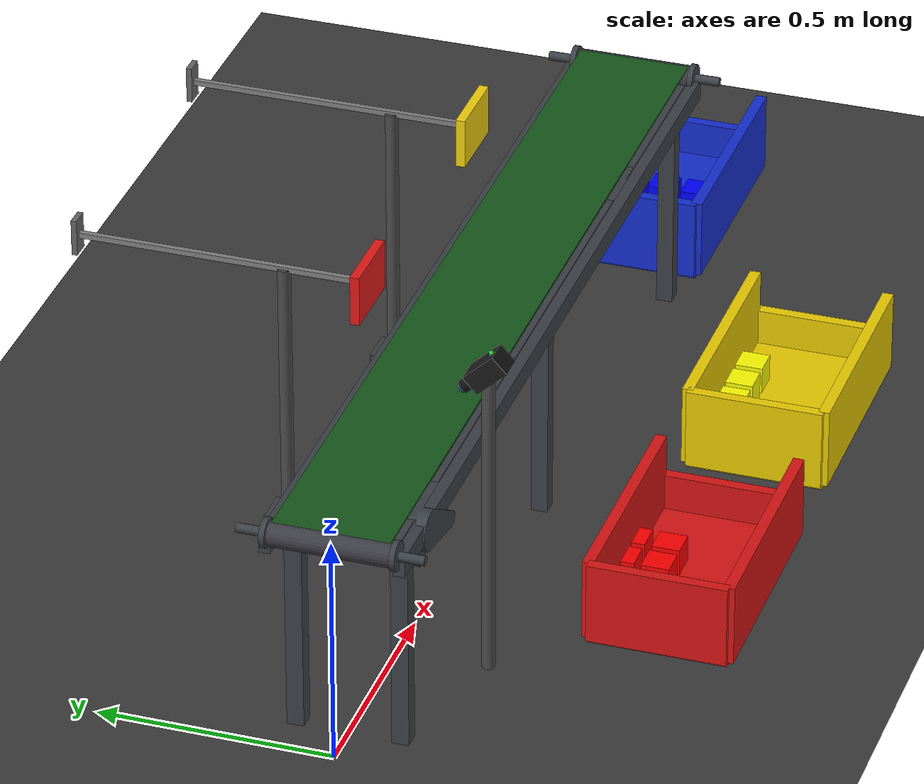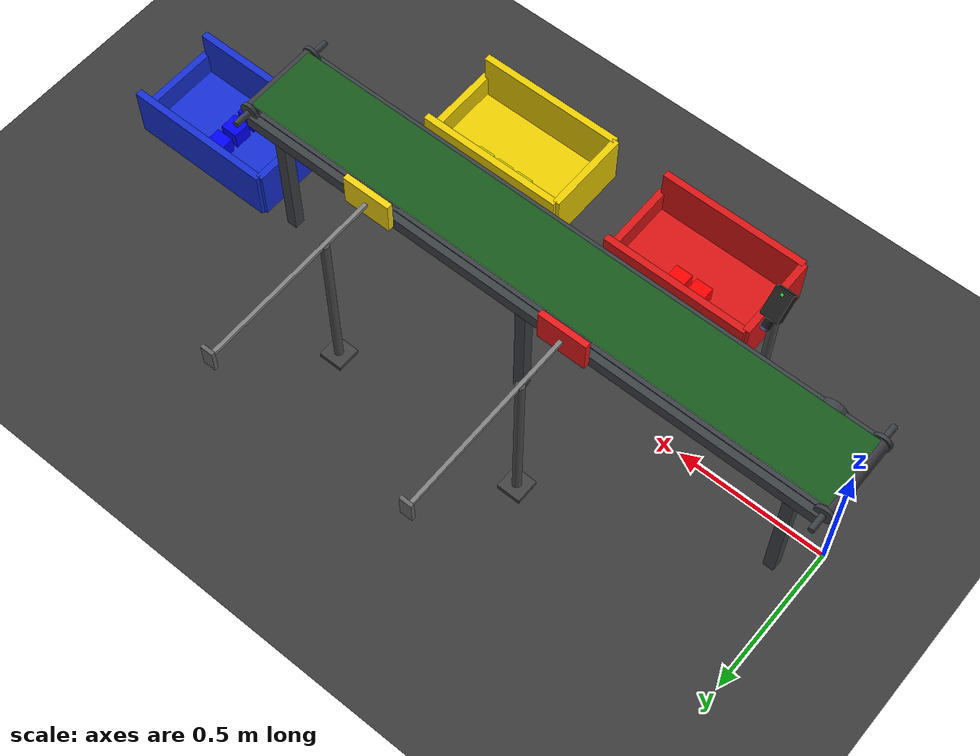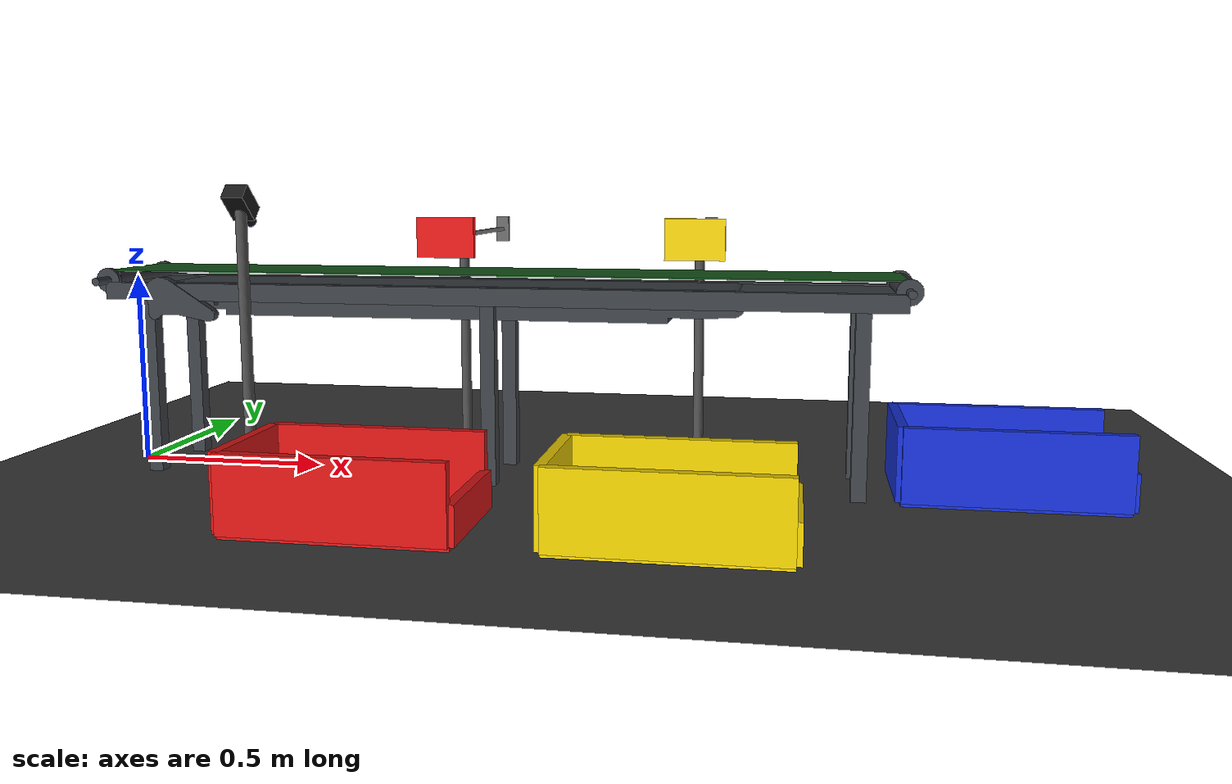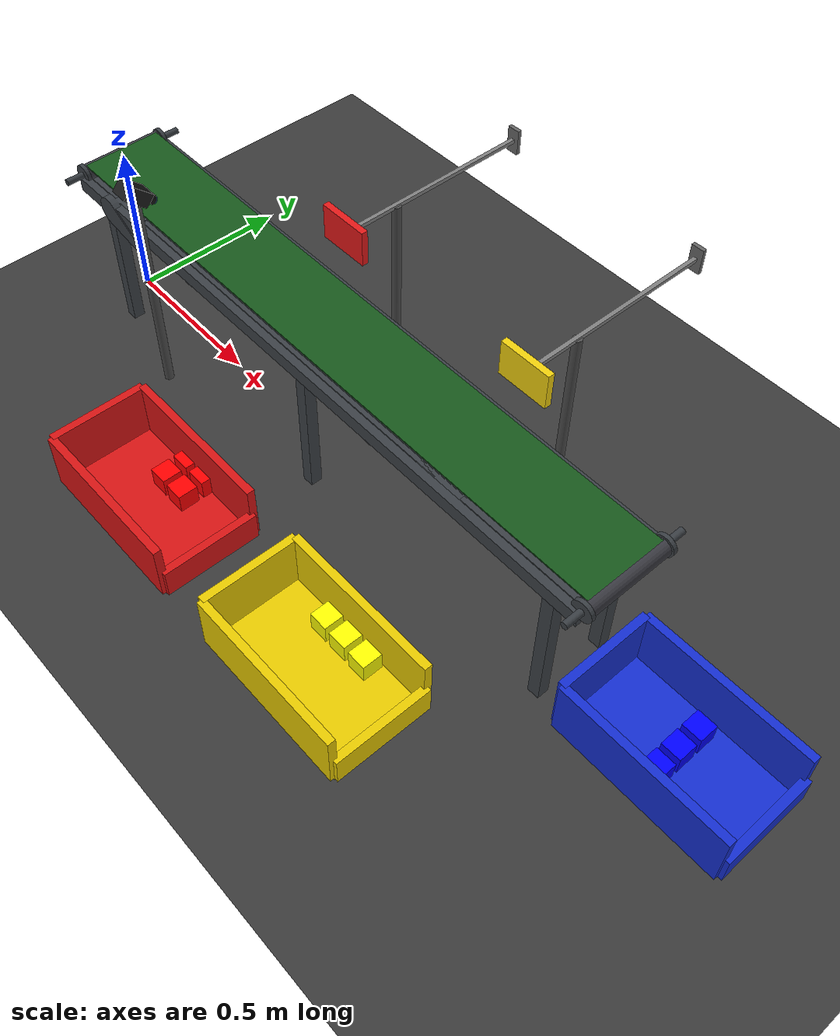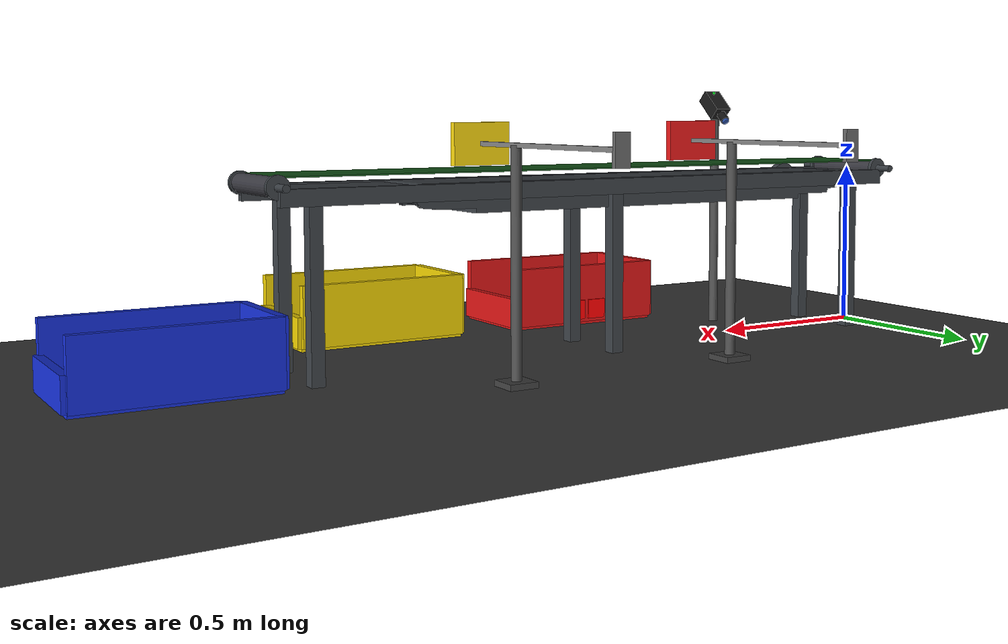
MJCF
<mujoco model="KGF65-KA_BeltConveyor">
  <compiler angle="degree" meshdir="." texturedir="."/>
  <option gravity="0 0 -9.81"
          timestep="0.002"
          solver="Newton"
          iterations="100"
          tolerance="1e-10"
          cone="pyramidal"
          impratio="10"/>

  <!--  ASSET-->
  <asset>
    <mesh name="simlify" file="simlify.stl" scale="0.001 0.001 0.001"/>
    <texture name="belt_tex"  type="2d" file="belt_stripe.png"/>
    <texture name="metal_tex" type="2d" builtin="flat"
             rgb1=".48 .50 .52" width="1" height="1"/>
    <texture name="drum_tex"  type="2d" builtin="checker"
             rgb1=".18 .18 .20" rgb2=".28 .28 .32" width="64" height="64"/>
    <texture name="grid_tex"  type="2d" builtin="checker"
             rgb1=".20 .20 .20" rgb2=".26 .26 .26" width="64" height="64"/>
    <material name="belt_mat"    texture="belt_tex"
              texrepeat="20 1"   specular="0.05" shininess="0.03"
              rgba="0.12 0.48 0.16 1"/>
    <material name="frame_mat"   texture="metal_tex"
              specular="0.4"    shininess="0.25"
              rgba=".48 .50 .52 1"/>
    <material name="drum_mat"    texture="drum_tex"
              texrepeat="8 4"   specular="0.7" shininess="0.6"
              rgba="1 1 1 1"/>
    <material name="ground_mat"  texture="grid_tex"
              texrepeat="24 24" specular="0.05" shininess="0.03"
              rgba="1 1 1 1"/>
    <!-- Object materials -->
    <material name="obj0_mat" rgba="1 0 0 1"/>
    <material name="obj1_mat" rgba="0 0 1 1"/>
    <material name="obj2_mat" rgba="1 1 0 1"/>
    <material name="obj3_mat" rgba="1 0 0 1"/>
    <material name="obj4_mat" rgba="0 0 1 1"/>
    <material name="obj5_mat" rgba="1 1 0 1"/>
    <material name="obj6_mat" rgba="1 0 0 1"/>
    <material name="obj7_mat" rgba="0 0 1 1"/>
    <material name="obj8_mat" rgba="1 1 0 1"/>
    <material name="obj9_mat" rgba="1 0 0 1"/>
  </asset>

  <!-- DEFAULT -->
  <default>
    <geom condim="4"
          friction="0.8 0.008 0.0005"
          solimp="0.98 0.999 0.001 0.5 2"
          solref="0.010 1"/>
    <joint limited="false" damping="0.02" armature="0.001"/>

    <!-- Conveyor objects -->
    <default class="flat_obj">
      <geom type="box"
            size="0.030 0.030 0.030"
            condim="4"
            friction="0.75 0.006 0.0004"
            solimp="0.97 0.999 0.002 0.5 2"
            solref="0.010 1"
            density="600"
            contype="1" conaffinity="1"/>
      <joint type="free" damping="0.0" armature="0.0"/>
    </default>

    <!-- Bin walls -->
    <default class="bin_wall">
      <geom type="box"
            condim="3"
            friction="0.4 0.004 0.0002"
            solimp="0.98 0.999 0.001 0.5 2"
            solref="0.010 1"
            contype="1" conaffinity="1"/>
    </default>

    <!-- Pusher face -->
    <default class="pusher_face">
      <geom type="box"
            condim="3"
            friction="0.3 0.003 0.0001"
            solimp="0.99 0.999 0.001 0.5 2"
            solref="0.008 1"
            contype="1" conaffinity="1"/>
    </default>

  </default>

  <!-- WORLDBODY -->
  <worldbody>
    <!-- Ground plane -->
    <geom name="ground" type="plane" size="12 8 0.1"
          material="ground_mat"
          friction="0.5 0.005 0.0002"
          solimp="0.99 0.999 0.001" solref="0.010 1"
          contype="1" conaffinity="1"/>
    <!-- Lighting -->
    <light name="sun"  directional="true"
           diffuse=".85 .85 .85" specular=".2 .2 .2"
           pos="2 -2 6" dir="-.3 .4 -1" castshadow="true"/>
    <light name="fill" directional="false" diffuse=".35 .35 .38"
           pos="-1 3 4" dir=".4 -.5 -1" castshadow="false"/>
    <light name="top"  directional="false" diffuse=".25 .25 .25"
           pos="1 0 5"  dir="0 0 -1"     castshadow="false"/>
    <!-- SIDE CAMERA MOUNT -->

    <!-- Vertical post -->
    <geom type="cylinder" size="0.014 0.350"
          pos="0.40 -0.19 0.350"
          rgba=".30 .30 .30 1" contype="0" conaffinity="0"/>

    <!-- Camera body -->
    <body name="camera_body" pos="0.40 -0.19 0.70" euler="47 0 0">
      <!-- Housing box -->
      <geom type="box" size="0.028 0.022 0.042"
            rgba=".10 .10 .10 1" contype="0" conaffinity="0"/>
      <!-- Lens barrel -->
      <geom type="cylinder" size="0.014 0.016" pos="0 0 -0.056"
            rgba=".07 .07 .07 1" contype="0" conaffinity="0"/>
      <!-- Lens glass -->
      <geom type="cylinder" size="0.011 0.003" pos="0 0 -0.075"
            rgba=".25 .45 .90 0.75" contype="0" conaffinity="0"/>
      <!-- Status LED -->
      <geom type="sphere" size="0.005" pos="0 0.024 0.030"
            rgba=".05 .90 .15 1" contype="0" conaffinity="0"/>
      <!-- Camera sensor -->
      <camera name="side_camera" fovy="50"/>
    </body>

    <!--  CONVEYOR FRAME ASSEMBLY  -->
    <body name="conveyor_frame" pos="0 0 0">
      <geom name="frame_mesh" type="mesh" mesh="simlify"
            euler="0 90 90"
            pos="0.875 0 0.440"
            contype="0" conaffinity="0"
            material="frame_mat"/>
      <!-- Leg pairs -->
      <geom type="box" size=".018 .018 .237" pos=".10  -.110 .237" material="frame_mat" contype="0" conaffinity="0"/>
      <geom type="box" size=".018 .018 .237" pos=".10   .110 .237" material="frame_mat" contype="0" conaffinity="0"/>
      <geom type="box" size=".018 .018 .237" pos="1.00 -.110 .237" material="frame_mat" contype="0" conaffinity="0"/>
      <geom type="box" size=".018 .018 .237" pos="1.00  .110 .237" material="frame_mat" contype="0" conaffinity="0"/>
      <geom type="box" size=".018 .018 .237" pos="1.90 -.110 .237" material="frame_mat" contype="0" conaffinity="0"/>
      <geom type="box" size=".018 .018 .237" pos="1.90  .110 .237" material="frame_mat" contype="0" conaffinity="0"/>
      <!-- Rails & bed -->
      <geom name="rail_l" type="box" size="1.0 .012 .022" pos="1.0 -.138 .474" material="frame_mat" contype="0" conaffinity="0"/>
      <geom name="rail_r" type="box" size="1.0 .012 .022" pos="1.0  .138 .474" material="frame_mat" contype="0" conaffinity="0"/>
      <geom name="bed"    type="box" size="1.0 .122 .005" pos="1.0  .000 .487" material="frame_mat" contype="0" conaffinity="0"/>
      <!-- Drive drum -->
      <geom type="cylinder" size=".026 .126" pos="0.0  0.000 0.500" euler="90 0 0" material="drum_mat"  contype="0" conaffinity="0"/>
      <geom type="cylinder" size=".031 .006" pos="0.0  .133 0.500" euler="90 0 0"  material="frame_mat" contype="0" conaffinity="0"/>
      <geom type="cylinder" size=".031 .006" pos="0.0 -.133 0.500" euler="90 0 0"  material="frame_mat" contype="0" conaffinity="0"/>
      <geom type="cylinder" size=".010 .028" pos="0.0  .165 0.500" euler="90 0 0"  material="frame_mat" contype="0" conaffinity="0"/>
      <geom type="cylinder" size=".010 .028" pos="0.0 -.165 0.500" euler="90 0 0"  material="frame_mat" contype="0" conaffinity="0"/>
      <!-- Passive drum -->
      <geom type="cylinder" size=".026 .126" pos="2.0  0.000 0.500" euler="90 0 0" material="drum_mat"  contype="0" conaffinity="0"/>
      <geom type="cylinder" size=".031 .006" pos="2.0  .133 0.500" euler="90 0 0"  material="frame_mat" contype="0" conaffinity="0"/>
      <geom type="cylinder" size=".031 .006" pos="2.0 -.133 0.500" euler="90 0 0"  material="frame_mat" contype="0" conaffinity="0"/>
      <geom type="cylinder" size=".010 .028" pos="2.0  .165 0.500" euler="90 0 0"  material="frame_mat" contype="0" conaffinity="0"/>
      <geom type="cylinder" size=".010 .028" pos="2.0 -.165 0.500" euler="90 0 0"  material="frame_mat" contype="0" conaffinity="0"/>
      <!-- Belt visual -->
      <geom name="belt_visual" type="box" size="1.0 0.122 0.002"
            pos="1.0 0 0.524"
            contype="0" conaffinity="0"
            material="belt_mat"/>
      <!-- Belt physics floor -->
      <geom name="belt_floor" type="box"
            size="1.0 0.125 0.002"
            pos="1.0 0 0.524"
            condim="4"
            friction="1.4 0.008 0.0006"
            solimp="0.97 0.999 0.002 0.5 2"
            solref="0.010 1"
            contype="1" conaffinity="1"
            rgba="0 0 0 0"/>
    </body><!-- conveyor_frame -->

    <!--  DROP-OFF BINS  -->
    <!-- RED BIN  -->
    <body name="red_bin" pos="0.8 -0.5 0">
      <geom class="bin_wall" size=".255 .148 .010" pos="0 0 .010"    rgba=".85 .08 .08 1"/>
      <geom class="bin_wall" size=".012 .148 .090" pos="-.255 0 .100" rgba=".85 .08 .08 1"/>
      <geom class="bin_wall" size=".255 .012 .090" pos="0 -.148 .100" rgba=".85 .08 .08 1"/>
      <geom class="bin_wall" size=".255 .012 .090" pos="0  .148 .100" rgba=".85 .08 .08 1"/>
      <geom class="bin_wall" size=".012 .148 .045" pos=".255 0 .055"  rgba=".85 .08 .08 1"/>
    </body>
    <!-- BLUE BIN  -->
    <body name="blue_bin" pos="2.25 0.00 0">
      <geom class="bin_wall" size=".255 .148 .010" pos="0 0 .010"    rgba=".08 .18 .82 1"/>
      <geom class="bin_wall" size=".012 .148 .090" pos="-.255 0 .100" rgba=".08 .18 .82 1"/>
      <geom class="bin_wall" size=".255 .012 .090" pos="0 -.148 .100" rgba=".08 .18 .82 1"/>
      <geom class="bin_wall" size=".255 .012 .090" pos="0  .148 .100" rgba=".08 .18 .82 1"/>
      <geom class="bin_wall" size=".012 .148 .045" pos=".255 0 .055"  rgba=".08 .18 .82 1"/>
    </body>
    <!-- YELLOW BIN  -->
    <body name="yellow_bin" pos="1.5 -0.5 0">
      <geom class="bin_wall" size=".255 .148 .010" pos="0 0 .010"    rgba=".92 .80 .00 1"/>
      <geom class="bin_wall" size=".012 .148 .090" pos="-.255 0 .100" rgba=".92 .80 .00 1"/>
      <geom class="bin_wall" size=".255 .012 .090" pos="0 -.148 .100" rgba=".92 .80 .00 1"/>
      <geom class="bin_wall" size=".255 .012 .090" pos="0  .148 .100" rgba=".92 .80 .00 1"/>
      <geom class="bin_wall" size=".012 .148 .045" pos=".255 0 .055"  rgba=".92 .80 .00 1"/>
    </body>

    <!-- PUSHER RED PEDESTAL -->
    <!-- Vertical post -->
    <geom type="cylinder" size="0.014 0.300"
          pos="0.80 0.38 0.300"
          rgba=".30 .30 .30 1" contype="0" conaffinity="0"/>
    <!-- Base plate -->
    <geom type="box" size="0.040 0.040 0.008"
          pos="0.80 0.38 0.008"
          rgba=".25 .25 .25 1" contype="0" conaffinity="0"/>

    <!-- PUSHER YELLOW PEDESTAL -->
    <!-- Vertical post -->
    <geom type="cylinder" size="0.014 0.300"
          pos="1.480 0.38 0.300"
          rgba=".30 .30 .30 1" contype="0" conaffinity="0"/>
    <!-- Base plate -->
    <geom type="box" size="0.040 0.040 0.008"
          pos="1.480 0.38 0.008"
          rgba=".25 .25 .25 1" contype="0" conaffinity="0"/>

    <!--  PUSHER 1  —  RED objects  -->
    <body name="pusher_red" pos="0.80 0.20 0.6">
      <!-- Slide joint -->
      <joint name="pusher_red_slide" type="slide" axis="0 1 0"
             limited="true" range="-0.45 0.0"
             damping="80" armature="0.02"/>
      <!-- Pusher face -->
      <geom class="pusher_face"
            name="pusher_red_face"
            size="0.080 0.010 0.055"
            rgba="0.90 0.10 0.10 1.0"/>
      <!-- Visual arm -->
      <geom type="box" size="0.006 0.315 0.006" pos="0 0.315 0"
            rgba="0.50 0.50 0.50 1" contype="0" conaffinity="0"/>
      <!-- Visual wall bracket -->
      <geom type="box" size="0.020 0.006 0.040" pos="0 0.630 0"
            rgba="0.40 0.40 0.40 1" contype="0" conaffinity="0"/>
    </body><!-- pusher_red -->

    <!--   PUSHER 2  —  YELLOW objects  -->
    <body name="pusher_yellow" pos="1.480 0.20 0.6">
      <joint name="pusher_yellow_slide" type="slide" axis="0 1 0"
             limited="true" range="-0.45 0.0"
             damping="80" armature="0.02"/>
      <geom class="pusher_face"
            name="pusher_yellow_face"
            size="0.080 0.010 0.055"
            rgba="0.95 0.82 0.05 1.0"/>
      <geom type="box" size="0.006 0.315 0.006" pos="0 0.315 0"
            rgba="0.50 0.50 0.50 1" contype="0" conaffinity="0"/>
      <geom type="box" size="0.020 0.006 0.040" pos="0 0.630 0"
            rgba="0.40 0.40 0.40 1" contype="0" conaffinity="0"/>
    </body><!-- pusher_yellow -->

    <!-- 10 OBJECTS-->
    <!-- Red bin -->
    <body name="object_0" pos="0.7625 -0.4375 0.050">
      <joint name="obj0_free" type="free" damping="0" armature="0"/>
      <geom class="flat_obj" material="obj0_mat"/>
    </body>
    <body name="object_3" pos="0.8375 -0.4375 0.050">
      <joint name="obj3_free" type="free" damping="0" armature="0"/>
      <geom class="flat_obj" material="obj3_mat"/>
    </body>
    <body name="object_6" pos="0.7625 -0.3625 0.050">
      <joint name="obj6_free" type="free" damping="0" armature="0"/>
      <geom class="flat_obj" material="obj6_mat"/>
    </body>
    <body name="object_9" pos="0.8375 -0.3625 0.050">
      <joint name="obj9_free" type="free" damping="0" armature="0"/>
      <geom class="flat_obj" material="obj9_mat"/>
    </body>

    <!-- Blue bin -->
    <body name="object_1" pos="2.25 -0.075 0.050">
      <joint name="obj1_free" type="free" damping="0" armature="0"/>
      <geom class="flat_obj" material="obj1_mat"/>
    </body>
    <body name="object_4" pos="2.25  0.000 0.050">
      <joint name="obj4_free" type="free" damping="0" armature="0"/>
      <geom class="flat_obj" material="obj4_mat"/>
    </body>
    <body name="object_7" pos="2.25  0.075 0.050">
      <joint name="obj7_free" type="free" damping="0" armature="0"/>
      <geom class="flat_obj" material="obj7_mat"/>
    </body>

    <!-- Yellow bin -->
    <body name="object_2" pos="1.425 -0.4 0.050">
      <joint name="obj2_free" type="free" damping="0" armature="0"/>
      <geom class="flat_obj" material="obj2_mat"/>
    </body>
    <body name="object_5" pos="1.500 -0.4 0.050">
      <joint name="obj5_free" type="free" damping="0" armature="0"/>
      <geom class="flat_obj" material="obj5_mat"/>
    </body>
    <body name="object_8" pos="1.575 -0.4 0.050">
      <joint name="obj8_free" type="free" damping="0" armature="0"/>
      <geom class="flat_obj" material="obj8_mat"/>
    </body>

  </worldbody>

  <!--  ACTUATORS -->
  <actuator>
    <!-- Pusher  -->
    <position name="act_push_red"
              joint="pusher_red_slide"
              kp="3000"
              ctrllimited="true"  ctrlrange="-0.45 0.0"
              forcelimited="true" forcerange="-1000 1000"/>
    <!-- Pusher 2 -->
    <position name="act_push_yellow"
              joint="pusher_yellow_slide"
              kp="3000"
              ctrllimited="true"  ctrlrange="-0.45 0.0"
              forcelimited="true" forcerange="-1000 1000"/>
  </actuator>
</mujoco>
